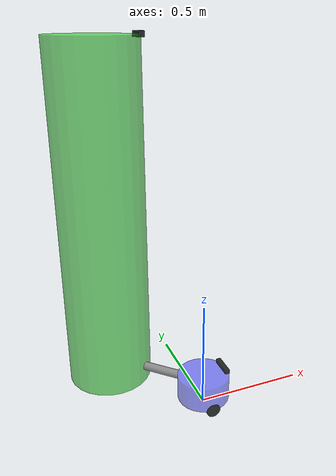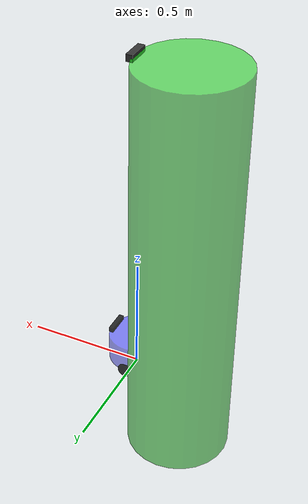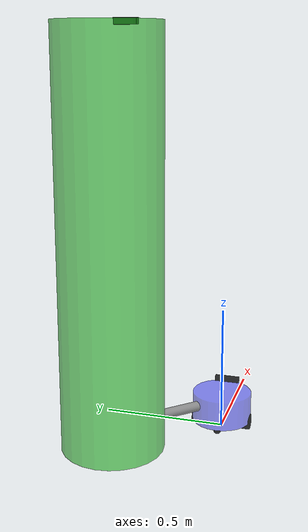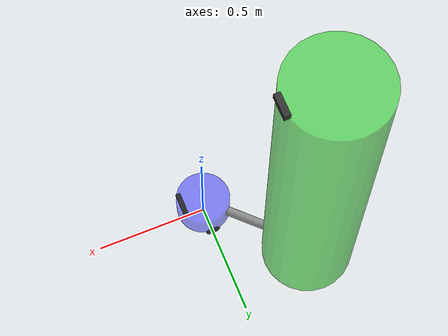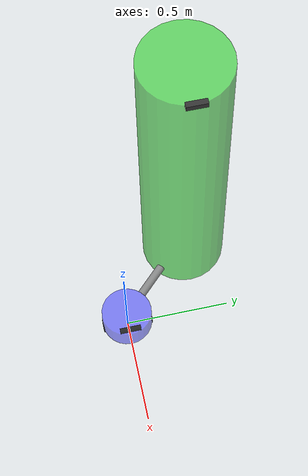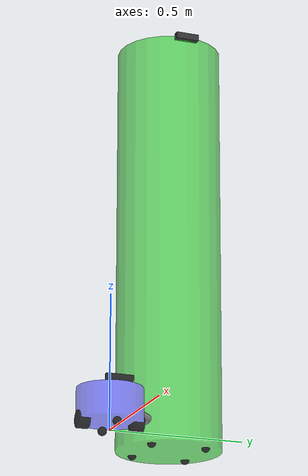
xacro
<?xml version="1.0"?>
<robot xmlns:xacro="http://www.ros.org/wiki/xacro" name="ubot">

     <!-- 执行器组件 -->
    <xacro:include filename="$(find robot_simulation)/urdf/actuator/wheel.urdf.xacro" />
    <xacro:include filename="$(find robot_simulation)/urdf/actuator/caster.urdf.xacro" />
    <xacro:include filename="$(find robot_simulation)/urdf/actuator/caster_general.urdf.xacro" />
    <xacro:include filename="$(find robot_simulation)/urdf/actuator/connecting_rod.urdf.xacro" />
    <xacro:include filename="$(find robot_simulation)/urdf/actuator/cylinder_base.urdf.xacro" />
    <!-- Gazebo 插件 -->
    <xacro:include filename="$(find robot_simulation)/urdf/plugins/gazebo_control_plugin.xacro" />
    <xacro:gazebo_control_plugin />
    <xacro:include filename="$(find robot_simulation)/urdf/plugins/gazebo_sensor_plugin.xacro" />
    <xacro:gazebo_sensor_plugin />
    <!-- 传感器组件 -->
    <xacro:include filename="$(find robot_simulation)/urdf/sensor/imu.urdf.xacro" />
    <xacro:include filename="$(find robot_simulation)/urdf/sensor/camera.urdf.xacro" />
    <xacro:include filename="$(find robot_simulation)/urdf/sensor/depth_camera.urdf.xacro" />

     <!-- 主体 -->
    <xacro:include filename="$(find robot_simulation)/urdf/base.urdf.xacro" />
    <xacro:base_xacro length="0.12" radius="0.1" />

    <!-- 传感器 -->
    <xacro:imu_xacro xyz="0 0 0.02" />
    <xacro:camera_xacro xyz="0.10 0 0.075" />

    <!-- 执行器主动轮+从动轮 -->
    <xacro:wheel_xacro wheel_name="left" xyz="0 0.10 -0.06" />
    <xacro:wheel_xacro wheel_name="right" xyz="0 -0.10 -0.06" />
    <xacro:caster_xacro caster_name="front" xyz="0.08 0.0 -0.076" />
    <xacro:caster_xacro caster_name="back" xyz="-0.08 0.0 -0.076" />

    <!-- 连接棒：从小车中心连接到圆柱体 -->
    <!-- 长度0.5m，指向左后方45°（绕Z轴旋转135°）-->
    <!-- 位置抬高到0.02m，避免挡住圆柱体万向轮 -->
    <xacro:connecting_rod_xacro
        name="auxiliary"
        length="0.5"
        radius="0.02"
        parent_link="base_link"
        xyz="0 0 0.02"
        rpy="0 0 ${pi*3/4}" />

    <!-- 辅助圆柱体本体：高1.6m，半径0.2m -->
    <!-- 连接在连接棒末端，z方向偏移-0.08m使圆柱体底部对齐地面 -->
    <xacro:cylinder_base_xacro
        name="auxiliary"
        length="1.6"
        radius="0.2"
        parent_link="auxiliary_rod_link"
        xyz="0.5 0 -0.08" />

    <!-- 圆柱体底部的四个万向轮（前后左右） -->
    <!-- 圆柱体半径0.2m，万向轮分布在四个方向 -->
    <xacro:caster_general_xacro
        caster_name="auxiliary_front"
        parent_link="auxiliary_cylinder_link"
        xyz="0.15 0.0 0.0" />
    <xacro:caster_general_xacro
        caster_name="auxiliary_back"
        parent_link="auxiliary_cylinder_link"
        xyz="-0.15 0.0 0.0" />
    <xacro:caster_general_xacro
        caster_name="auxiliary_left"
        parent_link="auxiliary_cylinder_link"
        xyz="0.0 0.15 0.0" />
    <xacro:caster_general_xacro
        caster_name="auxiliary_right"
        parent_link="auxiliary_cylinder_link"
        xyz="0.0 -0.15 0.0" />

    <!-- 圆柱体顶部的深度相机 -->
    <!-- 安装在圆柱体表面（半径0.2m），顶部高度1.6m，朝向世界坐标系前方 -->
    <!-- 圆柱体旋转了135°，所以在圆柱体坐标系中需要指向-135°方向 -->
    <!-- x = 0.2*cos(-135°) ≈ -0.141, y = 0.2*sin(-135°) ≈ -0.141 -->
    <xacro:depth_camera_xacro
        name="auxiliary"
        parent_link="auxiliary_cylinder_link"
        xyz="-0.141 -0.141 1.6"
        rpy="0 0 ${-pi*3/4}" />

</robot>

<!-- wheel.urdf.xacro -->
<robot xmlns:xacro="http://www.ros.org/wiki/xacro">
   <xacro:include filename="$(find robot_simulation)/urdf/common_inertia.xacro" />
    <xacro:macro name="wheel_xacro" params="wheel_name xyz">
        <link name="${wheel_name}_wheel_link">
            <visual>
                <origin xyz="0 0 0" rpy="1.57079 0 0" />
                <geometry>
                    <cylinder length="0.04" radius="0.032" />
                </geometry>
                <material name="black">
                    <color rgba="0.0 0.0 0.0 0.8"/>
                </material>
            </visual>
            <collision>
                <origin xyz="0 0 0" rpy="1.57079 0 0" />
                <geometry>
                    <cylinder length="0.04" radius="0.032" />
                </geometry>
                <material name="black">
                    <color rgba="0.0 0.0 0.0 0.8"/>
                </material>
            </collision>
            <xacro:cylinder_inertia m="0.1" h="0.04" r="0.032"/>
        </link>
        <gazebo reference="${wheel_name}_wheel_link">
            <mu1 value="20.0" />
            <mu2 value="20.0" />
            <kp value="1000000000.0" />
            <kd value="1.0" />
        </gazebo>

        <joint name="${wheel_name}_wheel_joint" type="continuous">
            <parent link="base_link" />
            <child link="${wheel_name}_wheel_link" />
            <origin xyz="${xyz}" />
            <axis xyz="0 1 0" />
        </joint>
    </xacro:macro>
</robot>

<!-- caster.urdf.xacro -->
<robot xmlns:xacro="http://www.ros.org/wiki/xacro">
   <xacro:include filename="$(find robot_simulation)/urdf/common_inertia.xacro" />
    <xacro:macro name="caster_xacro" params="caster_name xyz">
        <link name="${caster_name}_caster_link">
            <visual>
                <origin xyz="0 0 0" rpy="0 0 0" />
                <geometry>
                    <sphere radius="0.016" />
                </geometry>
                <material name="black">
                    <color rgba="0.0 0.0 0.0 0.8"/>
                </material>
            </visual>
            <collision>
                <origin xyz="0 0 0" rpy="0 0 0" />
                <geometry>
                    <sphere radius="0.016" />
                </geometry>
                <material name="black">
                    <color rgba="0.0 0.0 0.0 0.8"/>
                </material>
            </collision>
            <xacro:sphere_inertia m="0.01" r="0.016" />
        </link>
        <gazebo reference="${caster_name}_caster_link">
            <mu1 value="0.0" />
            <mu2 value="0.0" />
            <kp value="1000000000.0" />
            <kd value="1.0" />
        </gazebo>

        <joint name="${caster_name}_caster_joint" type="fixed">
            <parent link="base_link" />
            <child link="${caster_name}_caster_link" />
            <origin xyz="${xyz}" />
            <axis xyz="0 0 0" />
        </joint>

    </xacro:macro>
</robot>

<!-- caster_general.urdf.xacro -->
<robot xmlns:xacro="http://www.ros.org/wiki/xacro">
   <xacro:include filename="$(find robot_simulation)/urdf/common_inertia.xacro" />
    <xacro:macro name="caster_general_xacro" params="caster_name parent_link xyz">
        <!-- 通用万向轮，可以附加到任何父链接 -->
        <link name="${caster_name}_caster_link">
            <visual>
                <origin xyz="0 0 0" rpy="0 0 0" />
                <geometry>
                    <sphere radius="0.016" />
                </geometry>
                <material name="black">
                    <color rgba="0.0 0.0 0.0 0.8"/>
                </material>
            </visual>
            <collision>
                <origin xyz="0 0 0" rpy="0 0 0" />
                <geometry>
                    <sphere radius="0.016" />
                </geometry>
                <material name="black">
                    <color rgba="0.0 0.0 0.0 0.8"/>
                </material>
            </collision>
            <xacro:sphere_inertia m="0.01" r="0.016" />
        </link>
        <gazebo reference="${caster_name}_caster_link">
            <mu1 value="0.0" />
            <mu2 value="0.0" />
            <kp value="1000000000.0" />
            <kd value="1.0" />
        </gazebo>

        <joint name="${caster_name}_caster_joint" type="fixed">
            <parent link="${parent_link}" />
            <child link="${caster_name}_caster_link" />
            <origin xyz="${xyz}" />
            <axis xyz="0 0 0" />
        </joint>

    </xacro:macro>
</robot>

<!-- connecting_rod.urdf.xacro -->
<robot xmlns:xacro="http://www.ros.org/wiki/xacro">
   <xacro:include filename="$(find robot_simulation)/urdf/common_inertia.xacro" />
    <xacro:macro name="connecting_rod_xacro" params="name length radius parent_link xyz rpy">
        <!-- 连接棒（质量极小，不影响运动）-->
        <link name="${name}_rod_link">
            <visual>
                <origin xyz="${length/2.0} 0 0" rpy="0 ${pi/2} 0" />
                <geometry>
                    <cylinder length="${length}" radius="${radius}" />
                </geometry>
                <material name="grey">
                    <color rgba="0.5 0.5 0.5 0.8"/>
                </material>
            </visual>
            <collision>
                <origin xyz="${length/2.0} 0 0" rpy="0 ${pi/2} 0" />
                <geometry>
                    <cylinder length="${length}" radius="${radius}" />
                </geometry>
            </collision>
            <!-- 质量设为极小值，不影响小车运动 -->
            <xacro:cylinder_inertia m="0.001" r="${radius}" h="${length}"/>
        </link>

        <!-- 连接到父链接 -->
        <joint name="${name}_rod_joint" type="fixed">
            <parent link="${parent_link}" />
            <child link="${name}_rod_link" />
            <origin xyz="${xyz}" rpy="${rpy}" />
        </joint>

    </xacro:macro>

</robot>

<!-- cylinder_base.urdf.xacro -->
<robot xmlns:xacro="http://www.ros.org/wiki/xacro">
   <xacro:include filename="$(find robot_simulation)/urdf/common_inertia.xacro" />
    <xacro:macro name="cylinder_base_xacro" params="name length radius parent_link xyz">
        <!-- 圆柱体本体 -->
        <link name="${name}_cylinder_link">
            <visual>
                <origin xyz="0 0 ${length/2.0}" rpy="0 0 0" />
                <geometry>
                    <cylinder length="${length}" radius="${radius}" />
                </geometry>
                <material name="green">
                    <color rgba="0.1 0.8 0.1 0.6"/>
                </material>
            </visual>
            <collision>
                <origin xyz="0 0 ${length/2.0}" rpy="0 0 0" />
                <geometry>
                    <cylinder length="${length}" radius="${radius}" />
                </geometry>
            </collision>
            <!-- 质量设为极小值，使其不影响小车运动 -->
            <xacro:cylinder_inertia m="0.001" r="${radius}" h="${length}"/>
        </link>

        <!-- 连接到父链接的关节 -->
        <joint name="${name}_cylinder_joint" type="fixed">
            <parent link="${parent_link}" />
            <child link="${name}_cylinder_link" />
            <origin xyz="${xyz}" rpy="0 0 0" />
        </joint>

    </xacro:macro>

</robot>

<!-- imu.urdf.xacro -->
<robot xmlns:xacro="http://www.ros.org/wiki/xacro">
   <xacro:include filename="$(find robot_simulation)/urdf/common_inertia.xacro" />
    <xacro:macro name="imu_xacro" params="xyz">
        <link name="imu_link">
            <visual>
                <origin xyz="0 0 00" rpy="0 0 0" />
                <geometry>
                    <box size="0.02 0.02 0.02" />
                </geometry>
                <material name="black">
                    <color rgba="0 0 0 0.8" />
                </material>
            </visual>
            <collision>
                <origin xyz="0 0 00" rpy="0 0 0" />
                <geometry>
                    <box size="0.02 0.02 0.02" />
                </geometry>
                <material name="black">
                    <color rgba="0 0 0 0.8" />
                </material>
            </collision>
            <xacro:box_inertia m="0.01" w="0.02" d="0.02" h="0.02"/>
        </link>

        <joint name="imu_joint" type="fixed">
            <parent link="base_link" />
            <child link="imu_link" />
            <origin xyz="${xyz}" />
        </joint>
    </xacro:macro>
</robot>

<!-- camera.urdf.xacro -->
<robot xmlns:xacro="http://www.ros.org/wiki/xacro">
   <xacro:include filename="$(find robot_simulation)/urdf/common_inertia.xacro" />
    <xacro:macro name="camera_xacro" params="xyz">
        <!-- ============相机模块================ -->
        <link name="camera_link">
            <visual>
                <origin xyz="0 0 0.0" rpy="0 0 0" />
                <geometry>
                    <box size="0.02 0.10 0.02" />
                </geometry>
                <material name="black">
                    <color rgba="0.0 0.0 0.0 0.8"/>
                </material>
            </visual>
            <collision>
                <origin xyz="0 0 0.0" rpy="0 0 0" />
                <geometry>
                    <box size="0.02 0.10 0.02" />
                </geometry>
                <material name="black">
                    <color rgba="0.0 0.0 0.0 0.8"/>
                </material>
            </collision>
            <xacro:box_inertia m="0.01" w="0.02" h="0.10" d="0.02" />
        </link>
        <link name="camera_optical_link"></link>
        <joint name="camera_optical_joint" type="fixed">
            <parent link="camera_link" />
            <child link="camera_optical_link" />
            <origin xyz="0 0 0" rpy="${-pi/2} 0 ${-pi/2}" />
        </joint>

        <joint name="camera_joint" type="fixed">
            <parent link="base_link" />
            <child link="camera_link" />
            <origin xyz="${xyz}" />
        </joint>
    </xacro:macro>

</robot>

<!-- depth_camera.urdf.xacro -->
<robot xmlns:xacro="http://www.ros.org/wiki/xacro">
   <xacro:include filename="$(find robot_simulation)/urdf/common_inertia.xacro" />
    <xacro:macro name="depth_camera_xacro" params="name parent_link xyz rpy:='0 0 0'">
        <!-- ============深度相机模块================ -->
        <link name="${name}_depth_camera_link">
            <visual>
                <origin xyz="0 0 0.0" rpy="0 0 0" />
                <geometry>
                    <box size="0.025 0.09 0.025" />
                </geometry>
                <material name="dark_grey">
                    <color rgba="0.2 0.2 0.2 1.0"/>
                </material>
            </visual>
            <collision>
                <origin xyz="0 0 0.0" rpy="0 0 0" />
                <geometry>
                    <box size="0.025 0.09 0.025" />
                </geometry>
            </collision>
            <xacro:box_inertia m="0.02" w="0.025" h="0.09" d="0.025" />
        </link>

        <link name="${name}_depth_camera_optical_link"></link>

        <joint name="${name}_depth_camera_optical_joint" type="fixed">
            <parent link="${name}_depth_camera_link" />
            <child link="${name}_depth_camera_optical_link" />
            <origin xyz="0 0 0" rpy="${-pi/2} 0 ${-pi/2}" />
        </joint>

        <joint name="${name}_depth_camera_joint" type="fixed">
            <parent link="${parent_link}" />
            <child link="${name}_depth_camera_link" />
            <origin xyz="${xyz}" rpy="${rpy}" />
        </joint>
    </xacro:macro>

</robot>

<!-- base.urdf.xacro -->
<robot xmlns:xacro="http://www.ros.org/wiki/xacro">
   <xacro:include filename="$(find robot_simulation)/urdf/common_inertia.xacro" />
    <xacro:macro name="base_xacro" params="length radius">
     <link name="base_footprint" />

        <joint name="base_joint" type="fixed">
            <parent link="base_footprint" />
            <child link="base_link" />
            <origin xyz="0.0 0.0 ${length/2.0+0.032-0.001}" rpy="0 0 0" />
        </joint>

        <link name="base_link">
            <visual>
                <origin xyz="0 0 0.0" rpy="0 0 0" />
                <geometry>
                    <cylinder length="${length}" radius="${length}" />
                </geometry>
                <material name="blue">
                    <color rgba="0.1 0.1 1.0 0.5"/>
                </material>
            </visual>
            <collision>
                <origin xyz="0 0 0.0" rpy="0 0 0" />
                <geometry>
                    <cylinder length="${length}" radius="${length}" />
                </geometry>
                <material name="blue">
                    <color rgba="0.1 0.1 1.0 0.5"/>
                </material>
            </collision>
            <xacro:cylinder_inertia m="1.0" r="${radius}" h="${length}"/>
        </link>

    </xacro:macro>

</robot>
